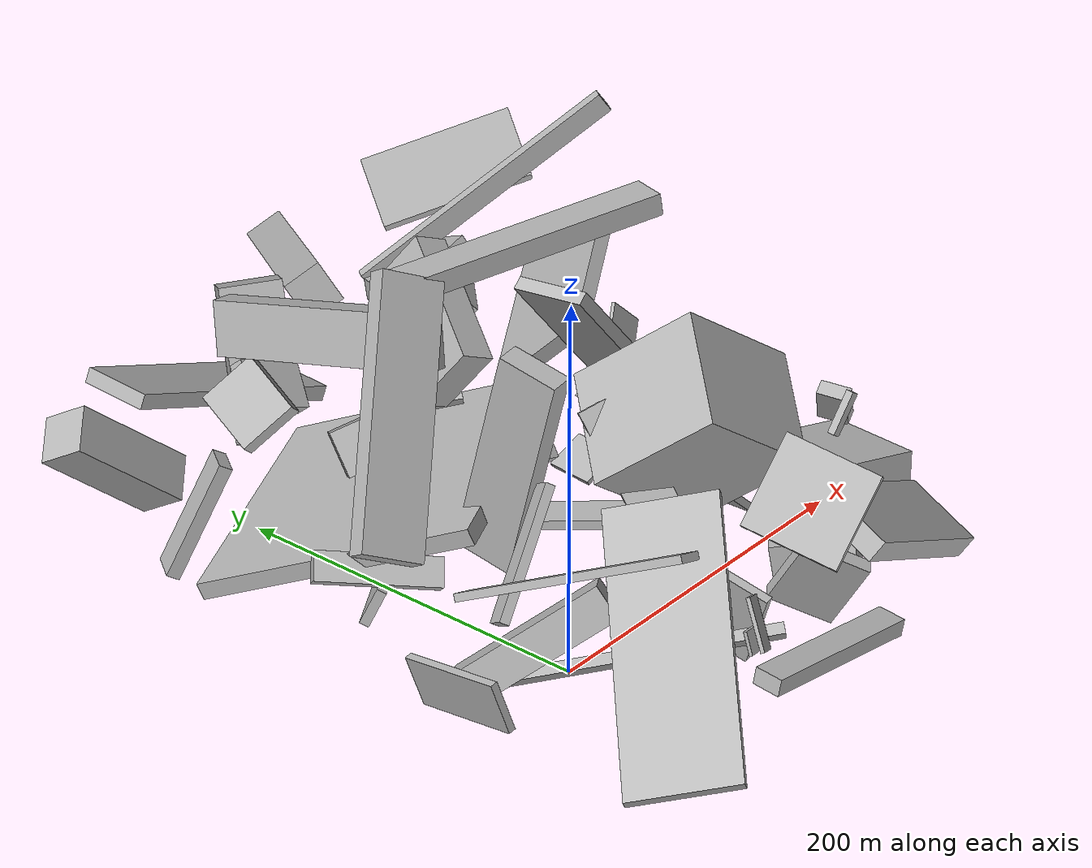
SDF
<sdf version="1.6">
 <world name="default">
  <model name="building_2">
   <static>0</static>
   <pose>121.67454293645461 -74.24415346656589 50.2734152597386 0.9018676148814514 -1.2060296102163366 0.769869163232745</pose>
   <link name="link">
    <gravity>0</gravity>
    <pose>0 0 3.0 0 0 0</pose>
    <collision name="collision"><geometry><box><size>24 10 6</size></box></geometry></collision>
    <visual name="visual">
     <cast_shadows>0</cast_shadows>
     <geometry><box><size>24 10 6</size></box></geometry>
     <material>
      <script>
       <uri>model://HANNAS_wall/materials/scripts</uri>
       <uri>model://HANNAS_wall/materials/textures</uri>
       <name>vrc/HANNAS_wall</name>
      </script>
     </material>
    </visual>
   </link>
  </model>
  <model name="building_4">
   <static>0</static>
   <pose>78.47049025315252 230.7935827755217 90.27862806128 1.9296425669540433 0.5133048657004172 2.638797281294016</pose>
   <link name="link">
    <gravity>0</gravity>
    <pose>0 0 75.0 0 0 0</pose>
    <collision name="collision"><geometry><box><size>21 23 150</size></box></geometry></collision>
    <visual name="visual">
     <cast_shadows>0</cast_shadows>
     <geometry><box><size>21 23 150</size></box></geometry>
     <material>
      <script>
       <uri>model://HANNAS_wall/materials/scripts</uri>
       <uri>model://HANNAS_wall/materials/textures</uri>
       <name>vrc/HANNAS_wall</name>
      </script>
     </material>
    </visual>
   </link>
  </model>
  <model name="building_5">
   <static>0</static>
   <pose>128.24079163408467 69.52383484495557 87.54424538794112 2.210367759030449 -0.14760717539159557 -1.586582268303358</pose>
   <link name="link">
    <gravity>0</gravity>
    <pose>0 0 3.5 0 0 0</pose>
    <collision name="collision"><geometry><box><size>42 150 7</size></box></geometry></collision>
    <visual name="visual">
     <cast_shadows>0</cast_shadows>
     <geometry><box><size>42 150 7</size></box></geometry>
     <material>
      <script>
       <uri>model://HANNAS_wall/materials/scripts</uri>
       <uri>model://HANNAS_wall/materials/textures</uri>
       <name>vrc/HANNAS_wall</name>
      </script>
     </material>
    </visual>
   </link>
  </model>
  <model name="building_7">
   <static>0</static>
   <pose>33.65582038439773 128.1588412073554 117.12757634830288 -0.5220257955210924 -0.395185563389628 2.862511263472836</pose>
   <link name="link">
    <gravity>0</gravity>
    <pose>0 0 20.0 0 0 0</pose>
    <collision name="collision"><geometry><box><size>18 71 40</size></box></geometry></collision>
    <visual name="visual">
     <cast_shadows>0</cast_shadows>
     <geometry><box><size>18 71 40</size></box></geometry>
     <material>
      <script>
       <uri>model://HANNAS_wall/materials/scripts</uri>
       <uri>model://HANNAS_wall/materials/textures</uri>
       <name>vrc/HANNAS_wall</name>
      </script>
     </material>
    </visual>
   </link>
  </model>
  <model name="building_10">
   <static>0</static>
   <pose>-33.84356640902685 -87.4722660566936 70.33140518814417 -2.861158219700162 0.5132305663151959 -2.3832899114575237</pose>
   <link name="link">
    <gravity>0</gravity>
    <pose>0 0 2.5 0 0 0</pose>
    <collision name="collision"><geometry><box><size>150 56 5</size></box></geometry></collision>
    <visual name="visual">
     <cast_shadows>0</cast_shadows>
     <geometry><box><size>150 56 5</size></box></geometry>
     <material>
      <script>
       <uri>model://HANNAS_wall/materials/scripts</uri>
       <uri>model://HANNAS_wall/materials/textures</uri>
       <name>vrc/HANNAS_wall</name>
      </script>
     </material>
    </visual>
   </link>
  </model>
  <model name="building_11">
   <static>0</static>
   <pose>140.59215792475706 -104.03305436627477 42.69475707253159 0.8491979033820337 0.8985987696537667 2.490434043281318</pose>
   <link name="link">
    <gravity>0</gravity>
    <pose>0 0 21.0 0 0 0</pose>
    <collision name="collision"><geometry><box><size>12 123 42</size></box></geometry></collision>
    <visual name="visual">
     <cast_shadows>0</cast_shadows>
     <geometry><box><size>12 123 42</size></box></geometry>
     <material>
      <script>
       <uri>model://HANNAS_wall/materials/scripts</uri>
       <uri>model://HANNAS_wall/materials/textures</uri>
       <name>vrc/HANNAS_wall</name>
      </script>
     </material>
    </visual>
   </link>
  </model>
  <model name="building_14">
   <static>0</static>
   <pose>-15.436032207418005 27.245005368923195 110.64087493631567 1.5579793545809095 -0.2396758570967066 1.6798934542473338</pose>
   <link name="link">
    <gravity>0</gravity>
    <pose>0 0 6.5 0 0 0</pose>
    <collision name="collision"><geometry><box><size>31 113 13</size></box></geometry></collision>
    <visual name="visual">
     <cast_shadows>0</cast_shadows>
     <geometry><box><size>31 113 13</size></box></geometry>
     <material>
      <script>
       <uri>model://HANNAS_wall/materials/scripts</uri>
       <uri>model://HANNAS_wall/materials/textures</uri>
       <name>vrc/HANNAS_wall</name>
      </script>
     </material>
    </visual>
   </link>
  </model>
  <model name="building_15">
   <static>0</static>
   <pose>112.00935101478676 -19.035828653204476 113.4393566233634 -2.3747816115167866 -0.5565827407260263 0.8830065642503457</pose>
   <link name="link">
    <gravity>0</gravity>
    <pose>0 0 36.5 0 0 0</pose>
    <collision name="collision"><geometry><box><size>60 75 73</size></box></geometry></collision>
    <visual name="visual">
     <cast_shadows>0</cast_shadows>
     <geometry><box><size>60 75 73</size></box></geometry>
     <material>
      <script>
       <uri>model://HANNAS_wall/materials/scripts</uri>
       <uri>model://HANNAS_wall/materials/textures</uri>
       <name>vrc/HANNAS_wall</name>
      </script>
     </material>
    </visual>
   </link>
  </model>
  <model name="building_17">
   <static>0</static>
   <pose>192.8419064176132 171.6175921665391 61.63886170789642 2.2914259539188766 -0.2971018441356968 0.5050845875066865</pose>
   <link name="link">
    <gravity>0</gravity>
    <pose>0 0 4.0 0 0 0</pose>
    <collision name="collision"><geometry><box><size>87 68 8</size></box></geometry></collision>
    <visual name="visual">
     <cast_shadows>0</cast_shadows>
     <geometry><box><size>87 68 8</size></box></geometry>
     <material>
      <script>
       <uri>model://HANNAS_wall/materials/scripts</uri>
       <uri>model://HANNAS_wall/materials/textures</uri>
       <name>vrc/HANNAS_wall</name>
      </script>
     </material>
    </visual>
   </link>
  </model>
  <model name="building_21">
   <static>0</static>
   <pose>-52.05956634757235 244.55013304726754 60.452595898819254 -2.41722536001845 -0.7011780011076999 2.828474958927994</pose>
   <link name="link">
    <gravity>0</gravity>
    <pose>0 0 12.0 0 0 0</pose>
    <collision name="collision"><geometry><box><size>71 26 24</size></box></geometry></collision>
    <visual name="visual">
     <cast_shadows>0</cast_shadows>
     <geometry><box><size>71 26 24</size></box></geometry>
     <material>
      <script>
       <uri>model://HANNAS_wall/materials/scripts</uri>
       <uri>model://HANNAS_wall/materials/textures</uri>
       <name>vrc/HANNAS_wall</name>
      </script>
     </material>
    </visual>
   </link>
  </model>
  <model name="building_24">
   <static>0</static>
   <pose>101.99166692213082 2.2670807623481766 21.442769774563462 2.1508957000983564 -1.1363727829226282 1.8044100079217842</pose>
   <link name="link">
    <gravity>0</gravity>
    <pose>0 0 8.5 0 0 0</pose>
    <collision name="collision"><geometry><box><size>28 4 17</size></box></geometry></collision>
    <visual name="visual">
     <cast_shadows>0</cast_shadows>
     <geometry><box><size>28 4 17</size></box></geometry>
     <material>
      <script>
       <uri>model://HANNAS_wall/materials/scripts</uri>
       <uri>model://HANNAS_wall/materials/textures</uri>
       <name>vrc/HANNAS_wall</name>
      </script>
     </material>
    </visual>
   </link>
  </model>
  <model name="building_29">
   <static>0</static>
   <pose>28.567235247773425 277.4853216290534 49.68945532320822 -1.7116640859551067 1.160692861656665 3.0284431751093934</pose>
   <link name="link">
    <gravity>0</gravity>
    <pose>0 0 18.5 0 0 0</pose>
    <collision name="collision"><geometry><box><size>8 150 37</size></box></geometry></collision>
    <visual name="visual">
     <cast_shadows>0</cast_shadows>
     <geometry><box><size>8 150 37</size></box></geometry>
     <material>
      <script>
       <uri>model://HANNAS_wall/materials/scripts</uri>
       <uri>model://HANNAS_wall/materials/textures</uri>
       <name>vrc/HANNAS_wall</name>
      </script>
     </material>
    </visual>
   </link>
  </model>
  <model name="building_38">
   <static>0</static>
   <pose>188.38997270461024 222.72976155121083 50.627325709774034 2.4270826479740526 -0.08993047776700397 -2.3756900822512206</pose>
   <link name="link">
    <gravity>0</gravity>
    <pose>0 0 2.5 0 0 0</pose>
    <collision name="collision"><geometry><box><size>50 10 5</size></box></geometry></collision>
    <visual name="visual">
     <cast_shadows>0</cast_shadows>
     <geometry><box><size>50 10 5</size></box></geometry>
     <material>
      <script>
       <uri>model://HANNAS_wall/materials/scripts</uri>
       <uri>model://HANNAS_wall/materials/textures</uri>
       <name>vrc/HANNAS_wall</name>
      </script>
     </material>
    </visual>
   </link>
  </model>
  <model name="building_39">
   <static>0</static>
   <pose>2.3936040287253206 -34.55458447452567 18.436485239203073 0.48066200383266544 -1.20341267101894 -2.8373235764339726</pose>
   <link name="link">
    <gravity>0</gravity>
    <pose>0 0 3.5 0 0 0</pose>
    <collision name="collision"><geometry><box><size>4 150 7</size></box></geometry></collision>
    <visual name="visual">
     <cast_shadows>0</cast_shadows>
     <geometry><box><size>4 150 7</size></box></geometry>
     <material>
      <script>
       <uri>model://HANNAS_wall/materials/scripts</uri>
       <uri>model://HANNAS_wall/materials/textures</uri>
       <name>vrc/HANNAS_wall</name>
      </script>
     </material>
    </visual>
   </link>
  </model>
  <model name="building_42">
   <static>0</static>
   <pose>-24.606994990017707 103.51368211834578 100.1238227056974 -0.5710644936701937 -0.9394448603496097 1.4514879218049381</pose>
   <link name="link">
    <gravity>0</gravity>
    <pose>0 0 16.0 0 0 0</pose>
    <collision name="collision"><geometry><box><size>23 32 32</size></box></geometry></collision>
    <visual name="visual">
     <cast_shadows>0</cast_shadows>
     <geometry><box><size>23 32 32</size></box></geometry>
     <material>
      <script>
       <uri>model://HANNAS_wall/materials/scripts</uri>
       <uri>model://HANNAS_wall/materials/textures</uri>
       <name>vrc/HANNAS_wall</name>
      </script>
     </material>
    </visual>
   </link>
  </model>
  <model name="building_45">
   <static>0</static>
   <pose>127.72950624329128 -43.83702198578652 17.342487761144245 1.8648189610550907 -1.3908175962853004 1.8951318731811575</pose>
   <link name="link">
    <gravity>0</gravity>
    <pose>0 0 25.5 0 0 0</pose>
    <collision name="collision"><geometry><box><size>20 33 51</size></box></geometry></collision>
    <visual name="visual">
     <cast_shadows>0</cast_shadows>
     <geometry><box><size>20 33 51</size></box></geometry>
     <material>
      <script>
       <uri>model://HANNAS_wall/materials/scripts</uri>
       <uri>model://HANNAS_wall/materials/textures</uri>
       <name>vrc/HANNAS_wall</name>
      </script>
     </material>
    </visual>
   </link>
  </model>
  <model name="building_46">
   <static>0</static>
   <pose>-37.46725545440586 -17.98908160519417 34.09203402637856 0.6190706177024311 -0.2816025937281326 -2.550592374504192</pose>
   <link name="link">
    <gravity>0</gravity>
    <pose>0 0 9.5 0 0 0</pose>
    <collision name="collision"><geometry><box><size>15 81 19</size></box></geometry></collision>
    <visual name="visual">
     <cast_shadows>0</cast_shadows>
     <geometry><box><size>15 81 19</size></box></geometry>
     <material>
      <script>
       <uri>model://HANNAS_wall/materials/scripts</uri>
       <uri>model://HANNAS_wall/materials/textures</uri>
       <name>vrc/HANNAS_wall</name>
      </script>
     </material>
    </visual>
   </link>
  </model>
  <model name="building_51">
   <static>0</static>
   <pose>-23.434223749424813 66.49650524037969 123.0851723953152 1.0722056912760072 -0.5584293523668006 -1.748581511516802</pose>
   <link name="link">
    <gravity>0</gravity>
    <pose>0 0 17.0 0 0 0</pose>
    <collision name="collision"><geometry><box><size>11 135 34</size></box></geometry></collision>
    <visual name="visual">
     <cast_shadows>0</cast_shadows>
     <geometry><box><size>11 135 34</size></box></geometry>
     <material>
      <script>
       <uri>model://HANNAS_wall/materials/scripts</uri>
       <uri>model://HANNAS_wall/materials/textures</uri>
       <name>vrc/HANNAS_wall</name>
      </script>
     </material>
    </visual>
   </link>
  </model>
  <model name="building_54">
   <static>0</static>
   <pose>-71.7414362035178 4.943007516217702 24.386367307547097 -1.7892298227269847 0.23647962099183326 1.4134970695552633</pose>
   <link name="link">
    <gravity>0</gravity>
    <pose>0 0 2.0 0 0 0</pose>
    <collision name="collision"><geometry><box><size>63 27 4</size></box></geometry></collision>
    <visual name="visual">
     <cast_shadows>0</cast_shadows>
     <geometry><box><size>63 27 4</size></box></geometry>
     <material>
      <script>
       <uri>model://HANNAS_wall/materials/scripts</uri>
       <uri>model://HANNAS_wall/materials/textures</uri>
       <name>vrc/HANNAS_wall</name>
      </script>
     </material>
    </visual>
   </link>
  </model>
  <model name="building_56">
   <static>0</static>
   <pose>72.72053062656335 149.6905106755527 56.48555275827151 -1.61707645190476 0.4018332063436533 1.941532094077183</pose>
   <link name="link">
    <gravity>0</gravity>
    <pose>0 0 71.5 0 0 0</pose>
    <collision name="collision"><geometry><box><size>150 9 143</size></box></geometry></collision>
    <visual name="visual">
     <cast_shadows>0</cast_shadows>
     <geometry><box><size>150 9 143</size></box></geometry>
     <material>
      <script>
       <uri>model://HANNAS_wall/materials/scripts</uri>
       <uri>model://HANNAS_wall/materials/textures</uri>
       <name>vrc/HANNAS_wall</name>
      </script>
     </material>
    </visual>
   </link>
  </model>
  <model name="building_58">
   <static>0</static>
   <pose>105.2858697096409 68.80697912173521 12.567507294914176 3.1386940039031495 -0.21320435050160277 -1.2077094300050126</pose>
   <link name="link">
    <gravity>0</gravity>
    <pose>0 0 2.5 0 0 0</pose>
    <collision name="collision"><geometry><box><size>66 20 5</size></box></geometry></collision>
    <visual name="visual">
     <cast_shadows>0</cast_shadows>
     <geometry><box><size>66 20 5</size></box></geometry>
     <material>
      <script>
       <uri>model://HANNAS_wall/materials/scripts</uri>
       <uri>model://HANNAS_wall/materials/textures</uri>
       <name>vrc/HANNAS_wall</name>
      </script>
     </material>
    </visual>
   </link>
  </model>
  <model name="building_61">
   <static>0</static>
   <pose>-77.92522691894823 -0.8116262026544945 82.16403261900786 1.0801252562167678 0.3054341510843903 0.0011245416665385207</pose>
   <link name="link">
    <gravity>0</gravity>
    <pose>0 0 65.5 0 0 0</pose>
    <collision name="collision"><geometry><box><size>13 4 131</size></box></geometry></collision>
    <visual name="visual">
     <cast_shadows>0</cast_shadows>
     <geometry><box><size>13 4 131</size></box></geometry>
     <material>
      <script>
       <uri>model://HANNAS_wall/materials/scripts</uri>
       <uri>model://HANNAS_wall/materials/textures</uri>
       <name>vrc/HANNAS_wall</name>
      </script>
     </material>
    </visual>
   </link>
  </model>
  <model name="building_64">
   <static>0</static>
   <pose>135.33620790058768 65.70482177772874 38.27635751664075 -1.9809521060622866 -0.9582839721666304 0.8088425283087683</pose>
   <link name="link">
    <gravity>0</gravity>
    <pose>0 0 3.0 0 0 0</pose>
    <collision name="collision"><geometry><box><size>11 21 6</size></box></geometry></collision>
    <visual name="visual">
     <cast_shadows>0</cast_shadows>
     <geometry><box><size>11 21 6</size></box></geometry>
     <material>
      <script>
       <uri>model://HANNAS_wall/materials/scripts</uri>
       <uri>model://HANNAS_wall/materials/textures</uri>
       <name>vrc/HANNAS_wall</name>
      </script>
     </material>
    </visual>
   </link>
  </model>
  <model name="building_66">
   <static>0</static>
   <pose>192.3615963505703 121.91541323917048 26.12556142750165 -0.4462535279282668 -0.8123478860807904 -0.15680962635294346</pose>
   <link name="link">
    <gravity>0</gravity>
    <pose>0 0 2.0 0 0 0</pose>
    <collision name="collision"><geometry><box><size>33 68 4</size></box></geometry></collision>
    <visual name="visual">
     <cast_shadows>0</cast_shadows>
     <geometry><box><size>33 68 4</size></box></geometry>
     <material>
      <script>
       <uri>model://HANNAS_wall/materials/scripts</uri>
       <uri>model://HANNAS_wall/materials/textures</uri>
       <name>vrc/HANNAS_wall</name>
      </script>
     </material>
    </visual>
   </link>
  </model>
  <model name="building_68">
   <static>0</static>
   <pose>22.005961259837658 228.41549598192253 29.76438755639913 -0.8368225240126254 -0.2996126802720376 2.827544373520184</pose>
   <link name="link">
    <gravity>0</gravity>
    <pose>0 0 4.0 0 0 0</pose>
    <collision name="collision"><geometry><box><size>11 4 8</size></box></geometry></collision>
    <visual name="visual">
     <cast_shadows>0</cast_shadows>
     <geometry><box><size>11 4 8</size></box></geometry>
     <material>
      <script>
       <uri>model://HANNAS_wall/materials/scripts</uri>
       <uri>model://HANNAS_wall/materials/textures</uri>
       <name>vrc/HANNAS_wall</name>
      </script>
     </material>
    </visual>
   </link>
  </model>
  <model name="building_69">
   <static>0</static>
   <pose>143.77675388909842 173.9236284522904 142.46889273238654 1.4964812934352398 0.9607517025618946 -0.7080067171308745</pose>
   <link name="link">
    <gravity>0</gravity>
    <pose>0 0 3.0 0 0 0</pose>
    <collision name="collision"><geometry><box><size>11 150 6</size></box></geometry></collision>
    <visual name="visual">
     <cast_shadows>0</cast_shadows>
     <geometry><box><size>11 150 6</size></box></geometry>
     <material>
      <script>
       <uri>model://HANNAS_wall/materials/scripts</uri>
       <uri>model://HANNAS_wall/materials/textures</uri>
       <name>vrc/HANNAS_wall</name>
      </script>
     </material>
    </visual>
   </link>
  </model>
  <model name="building_70">
   <static>0</static>
   <pose>193.7905261526326 -11.777579147767677 58.88405471044159 0.10467041087398732 -0.4584070112829047 0.2743189031071126</pose>
   <link name="link">
    <gravity>0</gravity>
    <pose>0 0 10.5 0 0 0</pose>
    <collision name="collision"><geometry><box><size>8 16 21</size></box></geometry></collision>
    <visual name="visual">
     <cast_shadows>0</cast_shadows>
     <geometry><box><size>8 16 21</size></box></geometry>
     <material>
      <script>
       <uri>model://HANNAS_wall/materials/scripts</uri>
       <uri>model://HANNAS_wall/materials/textures</uri>
       <name>vrc/HANNAS_wall</name>
      </script>
     </material>
    </visual>
   </link>
  </model>
  <model name="building_71">
   <static>0</static>
   <pose>-11.404513833269974 208.17044534728242 119.0253615658631 1.3510865400811243 0.21749768915627132 0.10399761834617208</pose>
   <link name="link">
    <gravity>0</gravity>
    <pose>0 0 62.0 0 0 0</pose>
    <collision name="collision"><geometry><box><size>14 28 124</size></box></geometry></collision>
    <visual name="visual">
     <cast_shadows>0</cast_shadows>
     <geometry><box><size>14 28 124</size></box></geometry>
     <material>
      <script>
       <uri>model://HANNAS_wall/materials/scripts</uri>
       <uri>model://HANNAS_wall/materials/textures</uri>
       <name>vrc/HANNAS_wall</name>
      </script>
     </material>
    </visual>
   </link>
  </model>
  <model name="building_72">
   <static>0</static>
   <pose>187.51503262855056 0.39584042618162485 26.669671195030368 2.3102233453066865 -1.3650034033164042 0.5754012721114544</pose>
   <link name="link">
    <gravity>0</gravity>
    <pose>0 0 22.0 0 0 0</pose>
    <collision name="collision"><geometry><box><size>17 58 44</size></box></geometry></collision>
    <visual name="visual">
     <cast_shadows>0</cast_shadows>
     <geometry><box><size>17 58 44</size></box></geometry>
     <material>
      <script>
       <uri>model://HANNAS_wall/materials/scripts</uri>
       <uri>model://HANNAS_wall/materials/textures</uri>
       <name>vrc/HANNAS_wall</name>
      </script>
     </material>
    </visual>
   </link>
  </model>
  <model name="building_73">
   <static>0</static>
   <pose>50.41441276940639 -48.86515830123618 17.270788213609162 0.008411826421008902 -0.17097979439465852 0.5219195094444791</pose>
   <link name="link">
    <gravity>0</gravity>
    <pose>0 0 6.5 0 0 0</pose>
    <collision name="collision"><geometry><box><size>57 4 13</size></box></geometry></collision>
    <visual name="visual">
     <cast_shadows>0</cast_shadows>
     <geometry><box><size>57 4 13</size></box></geometry>
     <material>
      <script>
       <uri>model://HANNAS_wall/materials/scripts</uri>
       <uri>model://HANNAS_wall/materials/textures</uri>
       <name>vrc/HANNAS_wall</name>
      </script>
     </material>
    </visual>
   </link>
  </model>
  <model name="building_76">
   <static>0</static>
   <pose>175.00445266636143 177.18222179266186 17.21611575970656 2.916726455679521 -0.7598350707580366 -0.42946401375945614</pose>
   <link name="link">
    <gravity>0</gravity>
    <pose>0 0 3.5 0 0 0</pose>
    <collision name="collision"><geometry><box><size>13 15 7</size></box></geometry></collision>
    <visual name="visual">
     <cast_shadows>0</cast_shadows>
     <geometry><box><size>13 15 7</size></box></geometry>
     <material>
      <script>
       <uri>model://HANNAS_wall/materials/scripts</uri>
       <uri>model://HANNAS_wall/materials/textures</uri>
       <name>vrc/HANNAS_wall</name>
      </script>
     </material>
    </visual>
   </link>
  </model>
  <model name="building_79">
   <static>0</static>
   <pose>39.35307230038774 1.4992361614431573 52.040215701965934 -2.696509213882038 -1.2200347908346532 -1.8553147217834935</pose>
   <link name="link">
    <gravity>0</gravity>
    <pose>0 0 39.5 0 0 0</pose>
    <collision name="collision"><geometry><box><size>44 5 79</size></box></geometry></collision>
    <visual name="visual">
     <cast_shadows>0</cast_shadows>
     <geometry><box><size>44 5 79</size></box></geometry>
     <material>
      <script>
       <uri>model://HANNAS_wall/materials/scripts</uri>
       <uri>model://HANNAS_wall/materials/textures</uri>
       <name>vrc/HANNAS_wall</name>
      </script>
     </material>
    </visual>
   </link>
  </model>
  <model name="building_84">
   <static>0</static>
   <pose>61.185484021309335 90.80178563075475 177.11687253002722 -0.630353180238339 -1.421275825360982 1.8302887825855574</pose>
   <link name="link">
    <gravity>0</gravity>
    <pose>0 0 10.5 0 0 0</pose>
    <collision name="collision"><geometry><box><size>11 150 21</size></box></geometry></collision>
    <visual name="visual">
     <cast_shadows>0</cast_shadows>
     <geometry><box><size>11 150 21</size></box></geometry>
     <material>
      <script>
       <uri>model://HANNAS_wall/materials/scripts</uri>
       <uri>model://HANNAS_wall/materials/textures</uri>
       <name>vrc/HANNAS_wall</name>
      </script>
     </material>
    </visual>
   </link>
  </model>
  <model name="building_89">
   <static>0</static>
   <pose>-65.40334932147618 177.28350123366639 43.93147265052276 1.6494315401570414 -0.4719351508976589 2.4742273987972507</pose>
   <link name="link">
    <gravity>0</gravity>
    <pose>0 0 9.0 0 0 0</pose>
    <collision name="collision"><geometry><box><size>7 63 18</size></box></geometry></collision>
    <visual name="visual">
     <cast_shadows>0</cast_shadows>
     <geometry><box><size>7 63 18</size></box></geometry>
     <material>
      <script>
       <uri>model://HANNAS_wall/materials/scripts</uri>
       <uri>model://HANNAS_wall/materials/textures</uri>
       <name>vrc/HANNAS_wall</name>
      </script>
     </material>
    </visual>
   </link>
  </model>
  <model name="building_94">
   <static>0</static>
   <pose>77.76215705049447 -97.22837712977238 18.23760578173522 -2.982220176876737 -0.07722597517349851 1.5572262626478068</pose>
   <link name="link">
    <gravity>0</gravity>
    <pose>0 0 4.5 0 0 0</pose>
    <collision name="collision"><geometry><box><size>15 100 9</size></box></geometry></collision>
    <visual name="visual">
     <cast_shadows>0</cast_shadows>
     <geometry><box><size>15 100 9</size></box></geometry>
     <material>
      <script>
       <uri>model://HANNAS_wall/materials/scripts</uri>
       <uri>model://HANNAS_wall/materials/textures</uri>
       <name>vrc/HANNAS_wall</name>
      </script>
     </material>
    </visual>
   </link>
  </model>
  <model name="building_95">
   <static>0</static>
   <pose>73.08297115813626 -113.74122546817539 93.21783237678044 1.2246052728944015 0.8175241989552988 3.124153438494744</pose>
   <link name="link">
    <gravity>0</gravity>
    <pose>0 0 25.0 0 0 0</pose>
    <collision name="collision"><geometry><box><size>49 4 50</size></box></geometry></collision>
    <visual name="visual">
     <cast_shadows>0</cast_shadows>
     <geometry><box><size>49 4 50</size></box></geometry>
     <material>
      <script>
       <uri>model://HANNAS_wall/materials/scripts</uri>
       <uri>model://HANNAS_wall/materials/textures</uri>
       <name>vrc/HANNAS_wall</name>
      </script>
     </material>
    </visual>
   </link>
  </model>
  <model name="building_97">
   <static>0</static>
   <pose>15.985871656965834 235.0325069021692 91.52071963670099 1.4016300078307549 -1.143216593862086 1.0373045614144618</pose>
   <link name="link">
    <gravity>0</gravity>
    <pose>0 0 16.0 0 0 0</pose>
    <collision name="collision"><geometry><box><size>49 25 32</size></box></geometry></collision>
    <visual name="visual">
     <cast_shadows>0</cast_shadows>
     <geometry><box><size>49 25 32</size></box></geometry>
     <material>
      <script>
       <uri>model://HANNAS_wall/materials/scripts</uri>
       <uri>model://HANNAS_wall/materials/textures</uri>
       <name>vrc/HANNAS_wall</name>
      </script>
     </material>
    </visual>
   </link>
  </model>
  <model name="building_99">
   <static>0</static>
   <pose>56.207655521303934 136.94717841524954 75.31986641172293 1.4580423413805488 -0.347173925046282 0.9311156385384185</pose>
   <link name="link">
    <gravity>0</gravity>
    <pose>0 0 8.5 0 0 0</pose>
    <collision name="collision"><geometry><box><size>15 4 17</size></box></geometry></collision>
    <visual name="visual">
     <cast_shadows>0</cast_shadows>
     <geometry><box><size>15 4 17</size></box></geometry>
     <material>
      <script>
       <uri>model://HANNAS_wall/materials/scripts</uri>
       <uri>model://HANNAS_wall/materials/textures</uri>
       <name>vrc/HANNAS_wall</name>
      </script>
     </material>
    </visual>
   </link>
  </model>
  <model name="building_101">
   <static>0</static>
   <pose>-48.791228034210604 76.16213407719084 50.96962643803385 2.2924462119183544 -0.16004529350149319 2.4222447338062603</pose>
   <link name="link">
    <gravity>0</gravity>
    <pose>0 0 4.0 0 0 0</pose>
    <collision name="collision"><geometry><box><size>63 15 8</size></box></geometry></collision>
    <visual name="visual">
     <cast_shadows>0</cast_shadows>
     <geometry><box><size>63 15 8</size></box></geometry>
     <material>
      <script>
       <uri>model://HANNAS_wall/materials/scripts</uri>
       <uri>model://HANNAS_wall/materials/textures</uri>
       <name>vrc/HANNAS_wall</name>
      </script>
     </material>
    </visual>
   </link>
  </model>
  <model name="building_107">
   <static>0</static>
   <pose>-33.518631463387706 -2.233878912443574 83.7975547119596 -2.2116080205153272 0.4742281974828841 -0.7881750217741268</pose>
   <link name="link">
    <gravity>0</gravity>
    <pose>0 0 6.5 0 0 0</pose>
    <collision name="collision"><geometry><box><size>5 69 13</size></box></geometry></collision>
    <visual name="visual">
     <cast_shadows>0</cast_shadows>
     <geometry><box><size>5 69 13</size></box></geometry>
     <material>
      <script>
       <uri>model://HANNAS_wall/materials/scripts</uri>
       <uri>model://HANNAS_wall/materials/textures</uri>
       <name>vrc/HANNAS_wall</name>
      </script>
     </material>
    </visual>
   </link>
  </model>
  <model name="building_112">
   <static>0</static>
   <pose>178.45425979615294 -25.609488400372065 72.01349247129343 -3.0397364410148056 -0.9755403349890212 -0.10195986586955977</pose>
   <link name="link">
    <gravity>0</gravity>
    <pose>0 0 2.5 0 0 0</pose>
    <collision name="collision"><geometry><box><size>23 4 5</size></box></geometry></collision>
    <visual name="visual">
     <cast_shadows>0</cast_shadows>
     <geometry><box><size>23 4 5</size></box></geometry>
     <material>
      <script>
       <uri>model://HANNAS_wall/materials/scripts</uri>
       <uri>model://HANNAS_wall/materials/textures</uri>
       <name>vrc/HANNAS_wall</name>
      </script>
     </material>
    </visual>
   </link>
  </model>
  <model name="building_114">
   <static>0</static>
   <pose>137.90844556184155 102.32765487459277 13.512054852057826 -0.4635866995108957 0.09905360611410312 1.3644672048578423</pose>
   <link name="link">
    <gravity>0</gravity>
    <pose>0 0 1.0 0 0 0</pose>
    <collision name="collision"><geometry><box><size>30 22 2</size></box></geometry></collision>
    <visual name="visual">
     <cast_shadows>0</cast_shadows>
     <geometry><box><size>30 22 2</size></box></geometry>
     <material>
      <script>
       <uri>model://HANNAS_wall/materials/scripts</uri>
       <uri>model://HANNAS_wall/materials/textures</uri>
       <name>vrc/HANNAS_wall</name>
      </script>
     </material>
    </visual>
   </link>
  </model>
  <model name="building_115">
   <static>0</static>
   <pose>144.95880524116802 -25.397820457860192 38.21962198565031 0.9037836612085691 -0.057073490359234064 2.6437272589155376</pose>
   <link name="link">
    <gravity>0</gravity>
    <pose>0 0 6.0 0 0 0</pose>
    <collision name="collision"><geometry><box><size>7 11 12</size></box></geometry></collision>
    <visual name="visual">
     <cast_shadows>0</cast_shadows>
     <geometry><box><size>7 11 12</size></box></geometry>
     <material>
      <script>
       <uri>model://HANNAS_wall/materials/scripts</uri>
       <uri>model://HANNAS_wall/materials/textures</uri>
       <name>vrc/HANNAS_wall</name>
      </script>
     </material>
    </visual>
   </link>
  </model>
  <model name="building_124">
   <static>0</static>
   <pose>-51.61007776548088 78.22574637226008 29.20505389667804 -1.7178451765667486 -1.1348217180550235 -0.8901924456462892</pose>
   <link name="link">
    <gravity>0</gravity>
    <pose>0 0 20.5 0 0 0</pose>
    <collision name="collision"><geometry><box><size>21 5 41</size></box></geometry></collision>
    <visual name="visual">
     <cast_shadows>0</cast_shadows>
     <geometry><box><size>21 5 41</size></box></geometry>
     <material>
      <script>
       <uri>model://HANNAS_wall/materials/scripts</uri>
       <uri>model://HANNAS_wall/materials/textures</uri>
       <name>vrc/HANNAS_wall</name>
      </script>
     </material>
    </visual>
   </link>
  </model>
  <model name="building_126">
   <static>0</static>
   <pose>141.0673191845041 1.2560844822717268 64.63758839584479 -1.3721256367903512 -0.5409657622454408 -1.764373453966633</pose>
   <link name="link">
    <gravity>0</gravity>
    <pose>0 0 10.5 0 0 0</pose>
    <collision name="collision"><geometry><box><size>7 7 21</size></box></geometry></collision>
    <visual name="visual">
     <cast_shadows>0</cast_shadows>
     <geometry><box><size>7 7 21</size></box></geometry>
     <material>
      <script>
       <uri>model://HANNAS_wall/materials/scripts</uri>
       <uri>model://HANNAS_wall/materials/textures</uri>
       <name>vrc/HANNAS_wall</name>
      </script>
     </material>
    </visual>
   </link>
  </model>
  <model name="building_128">
   <static>0</static>
   <pose>-31.418542934930144 189.15945802689035 78.67811003754164 0.6656918882697047 0.6901112641590126 0.3531627952215967</pose>
   <link name="link">
    <gravity>0</gravity>
    <pose>0 0 15.5 0 0 0</pose>
    <collision name="collision"><geometry><box><size>12 34 31</size></box></geometry></collision>
    <visual name="visual">
     <cast_shadows>0</cast_shadows>
     <geometry><box><size>12 34 31</size></box></geometry>
     <material>
      <script>
       <uri>model://HANNAS_wall/materials/scripts</uri>
       <uri>model://HANNAS_wall/materials/textures</uri>
       <name>vrc/HANNAS_wall</name>
      </script>
     </material>
    </visual>
   </link>
  </model>
  <model name="building_133">
   <static>0</static>
   <pose>-35.899453834401484 116.6157350641313 36.15358712636327 -1.0718366424580115 -1.0738634050134568 1.7959784089391455</pose>
   <link name="link">
    <gravity>0</gravity>
    <pose>0 0 1.5 0 0 0</pose>
    <collision name="collision"><geometry><box><size>21 2 3</size></box></geometry></collision>
    <visual name="visual">
     <cast_shadows>0</cast_shadows>
     <geometry><box><size>21 2 3</size></box></geometry>
     <material>
      <script>
       <uri>model://HANNAS_wall/materials/scripts</uri>
       <uri>model://HANNAS_wall/materials/textures</uri>
       <name>vrc/HANNAS_wall</name>
      </script>
     </material>
    </visual>
   </link>
  </model>
  <model name="building_135">
   <static>0</static>
   <pose>-24.266885339850287 -87.92541659052955 9.383444976762085 -0.6525628574183864 -0.7027202860150138 -3.0868561423290357</pose>
   <link name="link">
    <gravity>0</gravity>
    <pose>0 0 2.0 0 0 0</pose>
    <collision name="collision"><geometry><box><size>12 16 4</size></box></geometry></collision>
    <visual name="visual">
     <cast_shadows>0</cast_shadows>
     <geometry><box><size>12 16 4</size></box></geometry>
     <material>
      <script>
       <uri>model://HANNAS_wall/materials/scripts</uri>
       <uri>model://HANNAS_wall/materials/textures</uri>
       <name>vrc/HANNAS_wall</name>
      </script>
     </material>
    </visual>
   </link>
  </model>
  <model name="building_142">
   <static>0</static>
   <pose>30.686438293421666 98.0777122425262 38.66095614105567 -1.1998332686632587 -0.7166331653175638 1.2539066511897008</pose>
   <link name="link">
    <gravity>0</gravity>
    <pose>0 0 10.5 0 0 0</pose>
    <collision name="collision"><geometry><box><size>15 26 21</size></box></geometry></collision>
    <visual name="visual">
     <cast_shadows>0</cast_shadows>
     <geometry><box><size>15 26 21</size></box></geometry>
     <material>
      <script>
       <uri>model://HANNAS_wall/materials/scripts</uri>
       <uri>model://HANNAS_wall/materials/textures</uri>
       <name>vrc/HANNAS_wall</name>
      </script>
     </material>
    </visual>
   </link>
  </model>
  <model name="building_144">
   <static>0</static>
   <pose>160.22180031685394 220.00621323059647 150.07698204261703 2.791752929915176 0.5776587237406788 0.6790262988309007</pose>
   <link name="link">
    <gravity>0</gravity>
    <pose>0 0 18.0 0 0 0</pose>
    <collision name="collision"><geometry><box><size>26 79 36</size></box></geometry></collision>
    <visual name="visual">
     <cast_shadows>0</cast_shadows>
     <geometry><box><size>26 79 36</size></box></geometry>
     <material>
      <script>
       <uri>model://HANNAS_wall/materials/scripts</uri>
       <uri>model://HANNAS_wall/materials/textures</uri>
       <name>vrc/HANNAS_wall</name>
      </script>
     </material>
    </visual>
   </link>
  </model>
  <model name="building_147">
   <static>0</static>
   <pose>139.13193793717954 204.6750700331123 96.35634272893527 2.7467792678050476 0.4646743404580621 1.2751205302511281</pose>
   <link name="link">
    <gravity>0</gravity>
    <pose>0 0 10.0 0 0 0</pose>
    <collision name="collision"><geometry><box><size>24 29 20</size></box></geometry></collision>
    <visual name="visual">
     <cast_shadows>0</cast_shadows>
     <geometry><box><size>24 29 20</size></box></geometry>
     <material>
      <script>
       <uri>model://HANNAS_wall/materials/scripts</uri>
       <uri>model://HANNAS_wall/materials/textures</uri>
       <name>vrc/HANNAS_wall</name>
      </script>
     </material>
    </visual>
   </link>
  </model>
  <model name="building_148">
   <static>0</static>
   <pose>97.60953918470977 -73.8667413263389 37.9319795366207 2.006796937078934 -1.0627973888902613 -1.325230385413934</pose>
   <link name="link">
    <gravity>0</gravity>
    <pose>0 0 4.0 0 0 0</pose>
    <collision name="collision"><geometry><box><size>39 35 8</size></box></geometry></collision>
    <visual name="visual">
     <cast_shadows>0</cast_shadows>
     <geometry><box><size>39 35 8</size></box></geometry>
     <material>
      <script>
       <uri>model://HANNAS_wall/materials/scripts</uri>
       <uri>model://HANNAS_wall/materials/textures</uri>
       <name>vrc/HANNAS_wall</name>
      </script>
     </material>
    </visual>
   </link>
  </model>
  <model name="building_151">
   <static>0</static>
   <pose>32.17991868648719 -85.52014176876676 39.05461076793544 -0.2675036402121099 1.1875430381147554 -1.7367441652578037</pose>
   <link name="link">
    <gravity>0</gravity>
    <pose>0 0 1.0 0 0 0</pose>
    <collision name="collision"><geometry><box><size>12 15 2</size></box></geometry></collision>
    <visual name="visual">
     <cast_shadows>0</cast_shadows>
     <geometry><box><size>12 15 2</size></box></geometry>
     <material>
      <script>
       <uri>model://HANNAS_wall/materials/scripts</uri>
       <uri>model://HANNAS_wall/materials/textures</uri>
       <name>vrc/HANNAS_wall</name>
      </script>
     </material>
    </visual>
   </link>
  </model>
  <model name="building_154">
   <static>0</static>
   <pose>-9.874258334968992 -113.74141493947357 95.12336611198168 -2.7032551496776205 -0.3543115819511595 -2.865500128898113</pose>
   <link name="link">
    <gravity>0</gravity>
    <pose>0 0 13.0 0 0 0</pose>
    <collision name="collision"><geometry><box><size>9 2 26</size></box></geometry></collision>
    <visual name="visual">
     <cast_shadows>0</cast_shadows>
     <geometry><box><size>9 2 26</size></box></geometry>
     <material>
      <script>
       <uri>model://HANNAS_wall/materials/scripts</uri>
       <uri>model://HANNAS_wall/materials/textures</uri>
       <name>vrc/HANNAS_wall</name>
      </script>
     </material>
    </visual>
   </link>
  </model>
  <model name="building_167">
   <static>0</static>
   <pose>130.45281013153254 10.220252437518447 36.89856516272732 -3.0640661445090602 -0.7644875848329405 3.065769015987353</pose>
   <link name="link">
    <gravity>0</gravity>
    <pose>0 0 2.0 0 0 0</pose>
    <collision name="collision"><geometry><box><size>29 25 4</size></box></geometry></collision>
    <visual name="visual">
     <cast_shadows>0</cast_shadows>
     <geometry><box><size>29 25 4</size></box></geometry>
     <material>
      <script>
       <uri>model://HANNAS_wall/materials/scripts</uri>
       <uri>model://HANNAS_wall/materials/textures</uri>
       <name>vrc/HANNAS_wall</name>
      </script>
     </material>
    </visual>
   </link>
  </model>
  <model name="building_168">
   <static>0</static>
   <pose>16.964906090540634 186.9025757561398 80.33886019064562 -1.128838399786363 -0.7468270090484457 1.0657352583599315</pose>
   <link name="link">
    <gravity>0</gravity>
    <pose>0 0 17.5 0 0 0</pose>
    <collision name="collision"><geometry><box><size>26 9 35</size></box></geometry></collision>
    <visual name="visual">
     <cast_shadows>0</cast_shadows>
     <geometry><box><size>26 9 35</size></box></geometry>
     <material>
      <script>
       <uri>model://HANNAS_wall/materials/scripts</uri>
       <uri>model://HANNAS_wall/materials/textures</uri>
       <name>vrc/HANNAS_wall</name>
      </script>
     </material>
    </visual>
   </link>
  </model>
  <model name="building_172">
   <static>0</static>
   <pose>89.74692089139393 183.84112449949973 12.804471073873634 0.662655452563131 0.9771567915246274 2.101206142656317</pose>
   <link name="link">
    <gravity>0</gravity>
    <pose>0 0 8.5 0 0 0</pose>
    <collision name="collision"><geometry><box><size>18 3 17</size></box></geometry></collision>
    <visual name="visual">
     <cast_shadows>0</cast_shadows>
     <geometry><box><size>18 3 17</size></box></geometry>
     <material>
      <script>
       <uri>model://HANNAS_wall/materials/scripts</uri>
       <uri>model://HANNAS_wall/materials/textures</uri>
       <name>vrc/HANNAS_wall</name>
      </script>
     </material>
    </visual>
   </link>
  </model>
  <model name="building_176">
   <static>0</static>
   <pose>71.52206574994884 -8.44606669051836 38.624936130692376 0.4220227020849278 -0.4683008994204245 -2.3009720382637395</pose>
   <link name="link">
    <gravity>0</gravity>
    <pose>0 0 40.0 0 0 0</pose>
    <collision name="collision"><geometry><box><size>3 24 80</size></box></geometry></collision>
    <visual name="visual">
     <cast_shadows>0</cast_shadows>
     <geometry><box><size>3 24 80</size></box></geometry>
     <material>
      <script>
       <uri>model://HANNAS_wall/materials/scripts</uri>
       <uri>model://HANNAS_wall/materials/textures</uri>
       <name>vrc/HANNAS_wall</name>
      </script>
     </material>
    </visual>
   </link>
  </model>
  <model name="building_178">
   <static>0</static>
   <pose>195.55392641375929 268.00835848396497 13.351840559846842 0.9905316690234354 -0.0018659713584251452 -1.6468404103969285</pose>
   <link name="link">
    <gravity>0</gravity>
    <pose>0 0 1.5 0 0 0</pose>
    <collision name="collision"><geometry><box><size>22 6 3</size></box></geometry></collision>
    <visual name="visual">
     <cast_shadows>0</cast_shadows>
     <geometry><box><size>22 6 3</size></box></geometry>
     <material>
      <script>
       <uri>model://HANNAS_wall/materials/scripts</uri>
       <uri>model://HANNAS_wall/materials/textures</uri>
       <name>vrc/HANNAS_wall</name>
      </script>
     </material>
    </visual>
   </link>
  </model>
  <model name="building_181">
   <static>0</static>
   <pose>119.07656290462165 115.98782838346801 32.09649636372909 -1.2308525933661765 0.7416591667001954 1.7143403782639877</pose>
   <link name="link">
    <gravity>0</gravity>
    <pose>0 0 5.0 0 0 0</pose>
    <collision name="collision"><geometry><box><size>12 29 10</size></box></geometry></collision>
    <visual name="visual">
     <cast_shadows>0</cast_shadows>
     <geometry><box><size>12 29 10</size></box></geometry>
     <material>
      <script>
       <uri>model://HANNAS_wall/materials/scripts</uri>
       <uri>model://HANNAS_wall/materials/textures</uri>
       <name>vrc/HANNAS_wall</name>
      </script>
     </material>
    </visual>
   </link>
  </model>
  <model name="building_182">
   <static>0</static>
   <pose>159.34555368594272 100.66156446105875 48.705709620856275 0.8644783634004434 0.3856365346997915 1.7838156065854127</pose>
   <link name="link">
    <gravity>0</gravity>
    <pose>0 0 20.5 0 0 0</pose>
    <collision name="collision"><geometry><box><size>2 22 41</size></box></geometry></collision>
    <visual name="visual">
     <cast_shadows>0</cast_shadows>
     <geometry><box><size>2 22 41</size></box></geometry>
     <material>
      <script>
       <uri>model://HANNAS_wall/materials/scripts</uri>
       <uri>model://HANNAS_wall/materials/textures</uri>
       <name>vrc/HANNAS_wall</name>
      </script>
     </material>
    </visual>
   </link>
  </model>
 </world>
</sdf>
